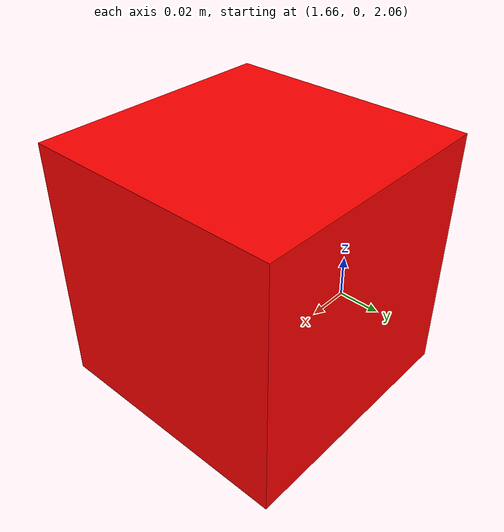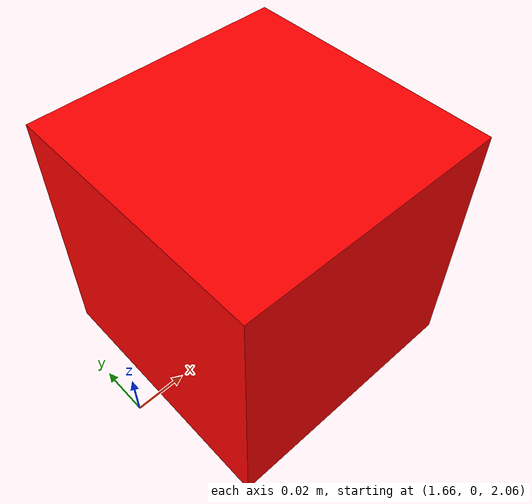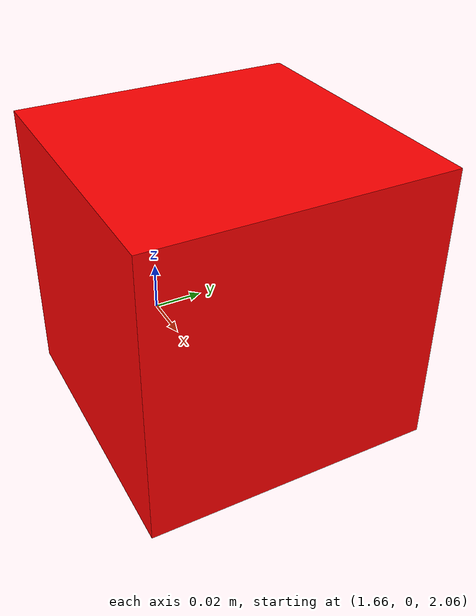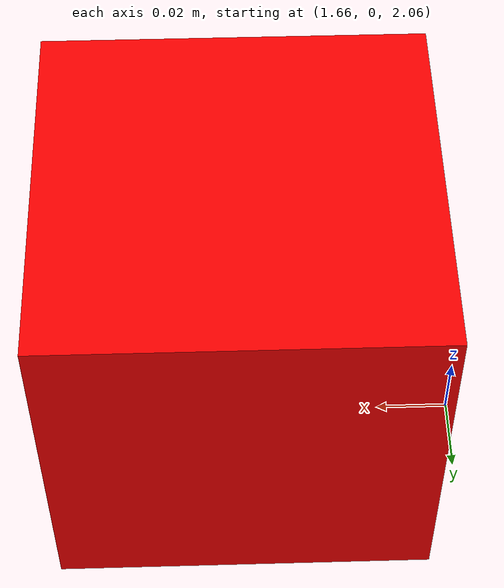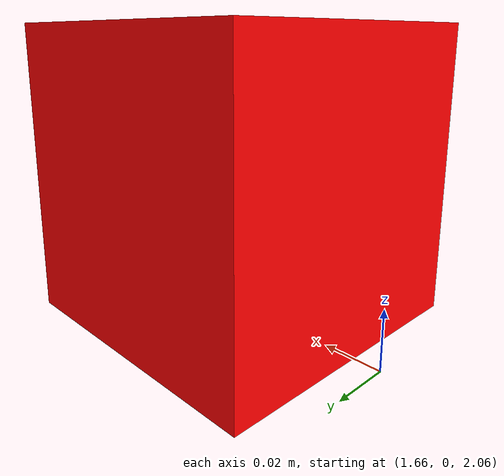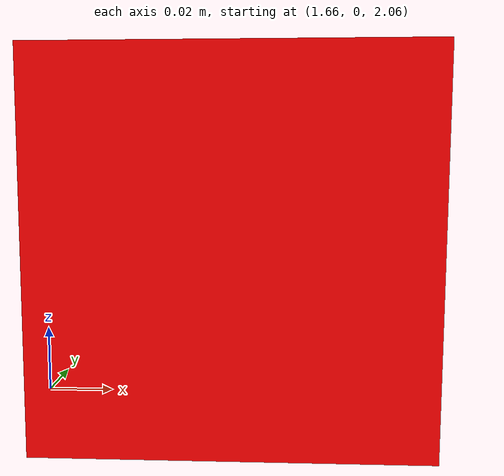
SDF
<?xml version="1.0" ?>
<sdf version='1.9'>
    <model name="ee_box">
        <static>false</static>
        <pose>1.7195 0.0 2.11 0 0 0</pose> <!-- Replace with actual EE pose -->
        <link name="boxlink">
            <pose>0.0 0.0 0.0 0 0 0</pose> <!-- Replace with actual EE pose -->
            <inertial>
            <mass>0.1</mass>
            <inertia>
                <ixx>0.001</ixx>
                <iyy>0.001</iyy>
                <izz>0.001</izz>
            </inertia>
            </inertial>
            <collision name="collision">
            <geometry>
                <box>
                <size>0.1 0.1 0.1</size>
                </box>
            </geometry>
            </collision>
            <visual name="visual">
            <geometry>
                <box>
                <size>0.1 0.1 0.1</size>
                </box>
            </geometry>
            <material>
                <ambient>1 0 0 1</ambient>
                <diffuse>1 0 0 1</diffuse>
            </material>
            </visual>
        </link>
        <plugin filename="libignition-gazebo-detachable-joint-system.so"
            name="ignition::gazebo::systems::DetachableJoint">
            <parent_link>boxlink</parent_link>
            <child_model>kr240r2900_2</child_model>
            <child_link>omnibase_revolute</child_link>
            <!-- Optional: customize topics -->
            <detach_topic>/model/gripperTCS/detach</detach_topic>
            <attach_topic>/model/gripperTCS/attach</attach_topic>
        </plugin>
        <plugin filename="libignition-gazebo-detachable-joint-system.so"
            name="ignition::gazebo::systems::DetachableJoint">
            <parent_link>boxlink</parent_link>
            <child_model>kr240r2900_2</child_model>
            <child_link>link_6</child_link>
            <!-- Optional: customize topics -->
            <detach_topic>/model/gripperKUKA/detach</detach_topic>
            <attach_topic>/model/gripperKUKA/attach</attach_topic>
        </plugin>
    </model>
</sdf>
